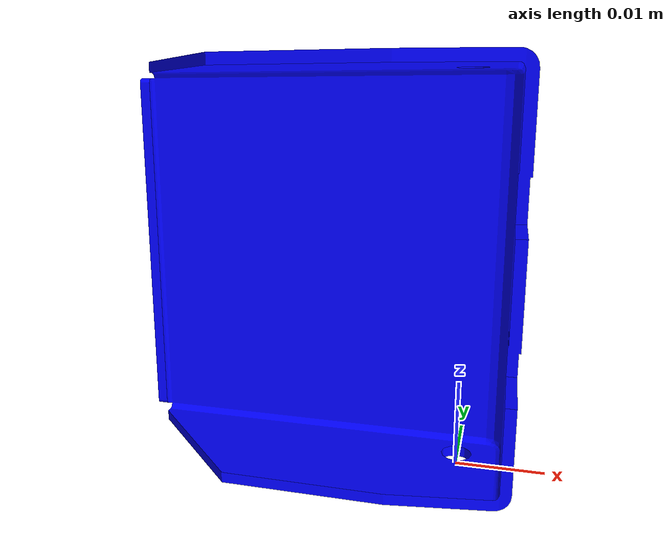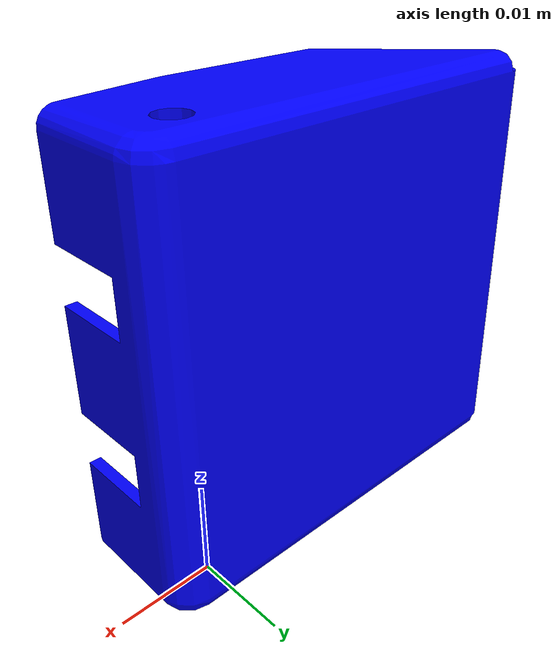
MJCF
<mujoco model="paddle_latch_handle">
  <default>
    <default class="visual">
      <geom group="2" type="mesh" contype="0" conaffinity="0"/>
    </default>
    <default class="collision">
      <geom group="3" type="mesh"/>
    </default>
  </default>
  <asset>
    <material name="mtl_paddle_latch_handle" specular="0.20000000000000004" shininess="1.0" rgba="0.00000000 0.00000000 1.00000000 1.0"/>
    <mesh file="paddle_latch_handle.obj"/>
  </asset>
  <worldbody>
    <body name="paddle_latch_handle">
      <geom material="mtl_paddle_latch_handle" mesh="paddle_latch_handle" class="visual"/>
      <geom mesh="paddle_latch_handle" class="collision"/>
    </body>
  </worldbody>
</mujoco>
